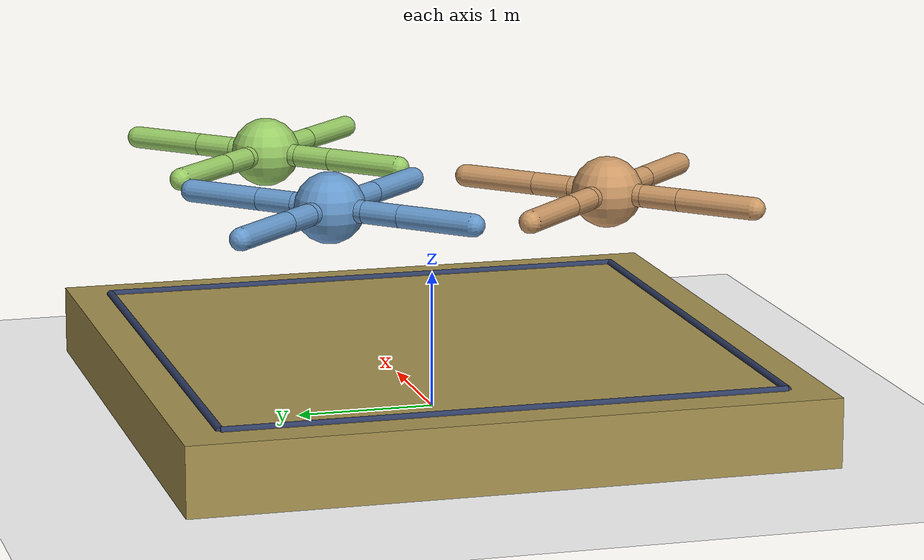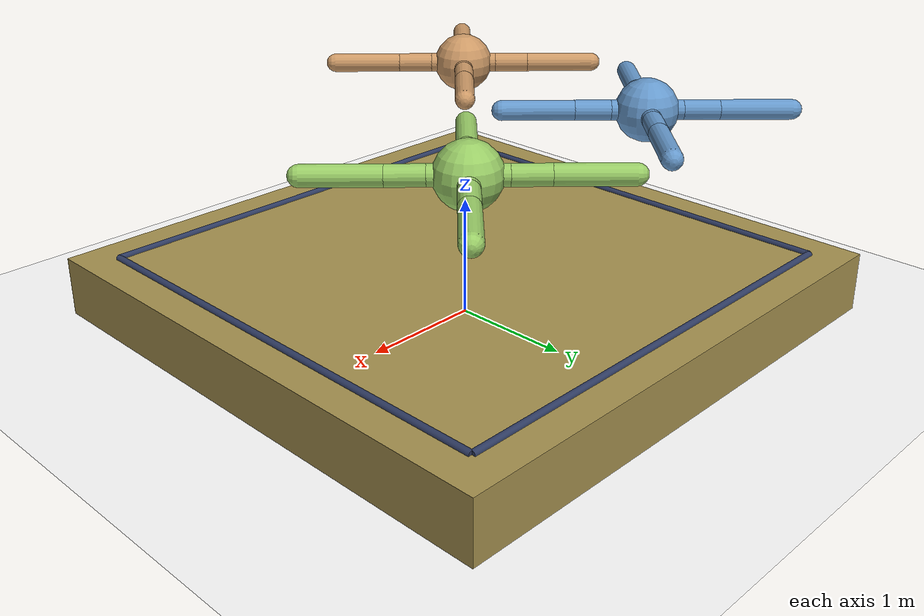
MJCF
<mujoco model="tatami">
  <compiler angle="degree" coordinate="local" inertiafromgeom="true"/>
  <option integrator="RK4" timestep="0.01"/>
  <size nconmax="1000" njmax="1000"/>

  <default>
    <joint armature="1" damping="1" limited="true"/>
    <default class="ant">
      <geom conaffinity="1" condim="3" density="5.0" friction="1 0.5 0.5" margin="0.01" rgba="0.8 0.6 0.4 1" material="geom"/>
      <motor ctrllimited="true" ctrlrange="-0.18 0.18"/>
    </default>

    <default class="bug">
      <geom conaffinity="1" condim="3" density="5.0" friction="1 0.5 0.5" margin="0.01" rgba="0.4 0.6 0.8 1" material="geom"/>
      <motor ctrllimited="true" ctrlrange="-0.2 0.2"/>

    <default class="spider">
      <geom conaffinity="1" condim="3" density="5.0" friction="1 0.5 0.5" margin="0.01" rgba="0.6 0.8 0.4 1" material="geom"/>
      <motor ctrllimited="true" ctrlrange="-0.22 0.22"/>
    </default>
  </default>

  </default>
  <asset>
    <texture builtin="gradient" height="100" rgb1=".8 .8 1" rgb2="1 1 1" type="skybox" width="100"/>
    <texture builtin="flat" height="1278" mark="cross" markrgb="1 1 1" name="texgeom" random="0.01" rgb1=".8 .6 .4" rgb2="0.8 0.6 0.4" type="cube" width="127"/>
    <texture builtin="flat" height="100" name="floorplane" rgb1="1 1 1" rgb2="1 1 1" type="2d" width="100"/>
    <texture builtin="flat" height="100" name="tatamiplane" rgb1=".65 0.57 0.31" rgb2="0 0 0" type="2d" width="100"/>
    <material name="MatPlane" reflectance="0.1" shininess="1" specular="1" texrepeat="1 1" texture="floorplane"/>
    <material name="TatamiPlane" reflectance="0.25" shininess="1" specular="1" texrepeat="1 1" texture="tatamiplane"/>
    <material name="geom" texture="texgeom" texuniform="true"/>
  </asset>
  <worldbody>
    <light cutoff="100" diffuse="1 1 1" dir="0 0 -1.3" directional="true" exponent="2" pos="0 0 1.3" specular=".5 .5 .5"/>
    <geom contype="1" conaffinity="1" friction="1 .1 .1" condim="3" material="MatPlane" name="floor" pos="0 0 -.025" rgba="1 1 1 1" size="20 20 0.125" type="plane"/>
    <geom conaffinity="1" condim="3" contype="1" friction="1 .1 .1" material="TatamiPlane" name="tatami" size="2.3 2.3 .25" pos="0 0 0.25" type="box" />
    <geom fromto="-2 2 .5  2 2 .5" name="topborder" rgba=".18 .23 .38 1" size=".03" type="cylinder"/>
    <geom fromto="2 -2 .5  2 2 .5" name="rightborder" rgba=".18 .23 .38 1" size=".03" type="cylinder"/>
    <geom fromto="-2 -2 .5  2 -2 .5" name="bottomborder" rgba=".18 .23 .38 1" size=".03" type="cylinder"/>
    <geom fromto="-2 -2 .5  -2 2 .5" name="leftborder" rgba=".18 .23 .38 1" size=".03" type="cylinder"/>
    <include file="include/ant.xml" />
    <include file="include/bug.xml" />
    <include file="include/spider.xml" />
  </worldbody>
  <include file="include/ant-sensor-actuator.xml" />
  <include file="include/bug-sensor-actuator.xml" />
  <include file="include/spider-sensor-actuator.xml" />
</mujoco>

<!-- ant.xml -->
<mujocoinclude>
  <body name="torso" pos="-1 -1 1.75">
    <geom class="ant" name="torso_geom" pos="0 0 0" size="0.25" type="sphere"/>
    <joint armature="0" damping="0" limited="false" margin="0.01" name="root" pos="0 0 0" type="free"/>
    <!-- Front left leg -->
    <body name="front_left_leg" pos="0 0 0">
      <geom class="ant" fromto="0.0 0.0 0.0 -0.2 0.2 0.0" name="aux_1_geom" size="0.08" type="capsule"/>
      <body name="aux_11" pos="-0.2 0.2 0">
        <joint axis="0 0 1" name="hip_1" pos="0.0 0.0 0.0" range="-30 30" type="hinge"/>
        <geom class="ant" fromto="0.0 0.0 0.0 -0.2 0.2 0.0" name="front_left_leg_geom" size="0.08" type="capsule"/>
        <body name="aux_12" pos="-0.2 0.2 0">
          <joint axis="1 1 0" name="ankle_1" pos="0.0 0.0 0.0" range="-70 -30" type="hinge"/>
          <geom class="ant" fromto="0.0 0.0 0.0 -0.4 0.4 0.0" name="front_left_ankle_geom" size="0.08" type="capsule"/>
        </body>
      </body>
    </body>
    <!-- Front right leg -->
    <body name="front_right_leg" pos="0 0 0">
      <geom class="ant" fromto="0.0 0.0 0.0 0.2 0.2 0.0" name="aux_2_geom" size="0.08" type="capsule"/>
      <body name="aux_21" pos="0.2 0.2 0">
        <joint axis="0 0 1" name="hip_2" pos="0.0 0.0 0.0" range="-30 30" type="hinge"/>
        <geom class="ant" fromto="0.0 0.0 0.0 0.2 0.2 0.0" name="front_right_leg_geom" size="0.08" type="capsule"/>
        <body name="aux_22" pos="0.2 0.2 0">
          <joint axis="-1 1 0" name="ankle_2" pos="0.0 0.0 0.0" range="30 70" type="hinge"/>
          <geom class="ant" fromto="0.0 0.0 0.0 0.4 0.4 0.0" name="front_right_ankle_geom" size="0.08" type="capsule"/>
        </body>
      </body>
    </body>
    <!-- Back left leg -->
    <body name="back_left_leg" pos="0 0 0">
      <geom class="ant" fromto="0.0 0.0 0.0 -0.2 -0.2 0.0" name="aux_3_geom" size="0.08" type="capsule"/>
      <body name="aux_31" pos="-0.2 -0.2 0">
        <joint axis="0 0 1" name="hip_3" pos="0.0 0.0 0.0" range="-30 30" type="hinge"/>
        <geom class="ant" fromto="0.0 0.0 0.0 -0.2 -0.2 0.0" name="back_left_leg_geom" size="0.08" type="capsule"/>
        <body name="aux_32" pos="-0.2 -0.2 0">
          <joint axis="-1 1 0" name="ankle_3" pos="0.0 0.0 0.0" range="-70 -30" type="hinge"/>
          <geom class="ant" fromto="0.0 0.0 0.0 -0.4 -0.4 0.0" name="back_left_ankle_geom" size="0.08" type="capsule"/>
        </body>
      </body>
    </body>
    <body name="back_right_leg" pos="0 0 0">
      <geom class="ant" fromto="0.0 0.0 0.0 0.2 -0.2 0.0" name="aux_4_geom" size="0.08" type="capsule"/>
      <body name="aux_41" pos="0.2 -0.2 0">
        <joint axis="0 0 1" name="hip_4" pos="0.0 0.0 0.0" range="-30 30" type="hinge"/>
        <geom class="ant" fromto="0.0 0.0 0.0 0.2 -0.2 0.0" name="back_right_leg_geom" size="0.08" type="capsule"/>
        <body name="aux_42" pos="0.2 -0.2 0">
          <joint axis="1 1 0" name="ankle_4" pos="0.0 0.0 0.0" range="30 70" type="hinge"/>
          <geom class="ant" fromto="0.0 0.0 0.0 0.4 -0.4 0.0" name="back_right_ankle_geom" size="0.08" type="capsule"/>
        </body>
      </body>
    </body>
  </body>
</mujocoinclude>

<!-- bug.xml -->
<mujocoinclude>
  <body name="torso2" pos="-1 1 1.75">
    <geom class="bug" name="torso_geom2" pos="0 0 0" size="0.25" type="sphere"/>
    <joint armature="0" damping="0" limited="false" margin="0.01" name="root2" pos="0 0 0" type="free"/>
    <!-- Front left leg -->
    <body name="front_left_leg2" pos="0 0 0">
      <geom class="bug" fromto="0.0 0.0 0.0 -0.2 0.2 0.0" name="aux_1_geom2" size="0.08" type="capsule"/>
      <body name="aux_112" pos="-0.2 0.2 0">
        <joint axis="0 0 1" name="hip_12" pos="0.0 0.0 0.0" range="-30 30" type="hinge"/>
        <geom class="bug" fromto="0.0 0.0 0.0 -0.2 0.2 0.0" name="front_left_leg_geom2" size="0.08" type="capsule"/>
        <body name="aux_122" pos="-0.2 0.2 0">
          <joint axis="1 1 0" name="ankle_12" pos="0.0 0.0 0.0" range="-70 -30" type="hinge"/>
          <geom class="bug" fromto="0.0 0.0 0.0 -0.4 0.4 0.0" name="front_left_ankle_geom2" size="0.08" type="capsule"/>
        </body>
      </body>
    </body>
    <!-- Front right leg -->
    <body name="front_right_leg2" pos="0 0 0">
      <geom class="bug" fromto="0.0 0.0 0.0 0.2 0.2 0.0" name="aux_2_geom2" size="0.08" type="capsule"/>
      <body name="aux_212" pos="0.2 0.2 0">
        <joint axis="0 0 1" name="hip_22" pos="0.0 0.0 0.0" range="-30 30" type="hinge"/>
        <geom class="bug" fromto="0.0 0.0 0.0 0.2 0.2 0.0" name="front_right_leg_geom2" size="0.08" type="capsule"/>
        <body name="aux_222" pos="0.2 0.2 0">
          <joint axis="-1 1 0" name="ankle_22" pos="0.0 0.0 0.0" range="30 70" type="hinge"/>
          <geom class="bug" fromto="0.0 0.0 0.0 0.4 0.4 0.0" name="front_right_ankle_geom2" size="0.08" type="capsule"/>
        </body>
      </body>
    </body>
    <!-- Back left leg -->
    <body name="back_left_leg2" pos="0 0 0">
      <geom class="bug" fromto="0.0 0.0 0.0 -0.2 -0.2 0.0" name="aux_3_geom2" size="0.08" type="capsule"/>
      <body name="aux_312" pos="-0.2 -0.2 0">
        <joint axis="0 0 1" name="hip_32" pos="0.0 0.0 0.0" range="-30 30" type="hinge"/>
        <geom class="bug" fromto="0.0 0.0 0.0 -0.2 -0.2 0.0" name="back_left_leg_geom2" size="0.08" type="capsule"/>
        <body name="aux_322" pos="-0.2 -0.2 0">
          <joint axis="-1 1 0" name="ankle_32" pos="0.0 0.0 0.0" range="-70 -30" type="hinge"/>
          <geom class="bug" fromto="0.0 0.0 0.0 -0.4 -0.4 0.0" name="back_left_ankle_geom2" size="0.08" type="capsule"/>
        </body>
      </body>
    </body>
    <body name="back_right_leg2" pos="0 0 0">
      <geom class="bug" fromto="0.0 0.0 0.0 0.2 -0.2 0.0" name="aux_4_geom2" size="0.08" type="capsule"/>
      <body name="aux_412" pos="0.2 -0.2 0">
        <joint axis="0 0 1" name="hip_42" pos="0.0 0.0 0.0" range="-30 30" type="hinge"/>
        <geom class="bug" fromto="0.0 0.0 0.0 0.2 -0.2 0.0" name="back_right_leg_geom2" size="0.08" type="capsule"/>
        <body name="aux_422" pos="0.2 -0.2 0">
          <joint axis="1 1 0" name="ankle_42" pos="0.0 0.0 0.0" range="30 70" type="hinge"/>
          <geom class="bug" fromto="0.0 0.0 0.0 0.4 -0.4 0.0" name="back_right_ankle_geom2" size="0.08" type="capsule"/>
        </body>
      </body>
    </body>
  </body>
</mujocoinclude>

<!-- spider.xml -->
<mujocoinclude>
  <body name="torso3" pos="1 1 1.75">
    <geom class="spider" name="torso_geom3" pos="0 0 0" size="0.25" type="sphere"/>
    <joint armature="0" damping="0" limited="false" margin="0.01" name="root3" pos="0 0 0" type="free"/>
    <!-- Front left leg -->
    <body name="front_left_leg3" pos="0 0 0">
      <geom class="spider" fromto="0.0 0.0 0.0 -0.2 0.2 0.0" name="aux_1_geom3" size="0.08" type="capsule"/>
      <body name="aux_113" pos="-0.2 0.2 0">
        <joint axis="0 0 1" name="hip_13" pos="0.0 0.0 0.0" range="-30 30" type="hinge"/>
        <geom class="spider" fromto="0.0 0.0 0.0 -0.2 0.2 0.0" name="front_left_leg_geom3" size="0.08" type="capsule"/>
        <body name="aux_123" pos="-0.2 0.2 0">
          <joint axis="1 1 0" name="ankle_13" pos="0.0 0.0 0.0" range="-70 -30" type="hinge"/>
          <geom class="spider" fromto="0.0 0.0 0.0 -0.4 0.4 0.0" name="front_left_ankle_geom3" size="0.08" type="capsule"/>
        </body>
      </body>
    </body>
    <!-- Front right leg -->
    <body name="front_right_leg3" pos="0 0 0">
      <geom class="spider" fromto="0.0 0.0 0.0 0.2 0.2 0.0" name="aux_2_geom3" size="0.08" type="capsule"/>
      <body name="aux_213" pos="0.2 0.2 0">
        <joint axis="0 0 1" name="hip_23" pos="0.0 0.0 0.0" range="-30 30" type="hinge"/>
        <geom class="spider" fromto="0.0 0.0 0.0 0.2 0.2 0.0" name="front_right_leg_geom3" size="0.08" type="capsule"/>
        <body name="aux_223" pos="0.2 0.2 0">
          <joint axis="-1 1 0" name="ankle_23" pos="0.0 0.0 0.0" range="30 70" type="hinge"/>
          <geom class="spider" fromto="0.0 0.0 0.0 0.4 0.4 0.0" name="front_right_ankle_geom3" size="0.08" type="capsule"/>
        </body>
      </body>
    </body>
    <!-- Back left leg -->
    <body name="back_left_leg3" pos="0 0 0">
      <geom class="spider" fromto="0.0 0.0 0.0 -0.2 -0.2 0.0" name="aux_3_geom3" size="0.08" type="capsule"/>
      <body name="aux_313" pos="-0.2 -0.2 0">
        <joint axis="0 0 1" name="hip_33" pos="0.0 0.0 0.0" range="-30 30" type="hinge"/>
        <geom class="spider" fromto="0.0 0.0 0.0 -0.2 -0.2 0.0" name="back_left_leg_geom3" size="0.08" type="capsule"/>
        <body name="aux_323" pos="-0.2 -0.2 0">
          <joint axis="-1 1 0" name="ankle_33" pos="0.0 0.0 0.0" range="-70 -30" type="hinge"/>
          <geom class="spider" fromto="0.0 0.0 0.0 -0.4 -0.4 0.0" name="back_left_ankle_geom3" size="0.08" type="capsule"/>
        </body>
      </body>
    </body>
    <body name="back_right_leg3" pos="0 0 0">
      <geom class="spider" fromto="0.0 0.0 0.0 0.2 -0.2 0.0" name="aux_4_geom3" size="0.08" type="capsule"/>
      <body name="aux_413" pos="0.2 -0.2 0">
        <joint axis="0 0 1" name="hip_43" pos="0.0 0.0 0.0" range="-30 30" type="hinge"/>
        <geom class="spider" fromto="0.0 0.0 0.0 0.2 -0.2 0.0" name="back_right_leg_geom3" size="0.08" type="capsule"/>
        <body name="aux_423" pos="0.2 -0.2 0">
          <joint axis="1 1 0" name="ankle_43" pos="0.0 0.0 0.0" range="30 70" type="hinge"/>
          <geom class="spider" fromto="0.0 0.0 0.0 0.4 -0.4 0.0" name="back_right_ankle_geom3" size="0.08" type="capsule"/>
        </body>
      </body>
    </body>
  </body>
</mujocoinclude>

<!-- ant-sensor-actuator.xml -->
<mujocoinclude>
    <actuator>
    <motor class="ant" joint="hip_1" gear="150"/>
    <motor class="ant" joint="ankle_1" gear="150"/>
    <motor class="ant" joint="hip_2" gear="150"/>
    <motor class="ant" joint="ankle_2" gear="150"/>
    <motor class="ant" joint="hip_3" gear="150"/>
    <motor class="ant" joint="ankle_3" gear="150"/>
    <motor class="ant" joint="hip_4" gear="150"/>
    <motor class="ant" joint="ankle_4" gear="150"/>
  </actuator>
  <sensor>
    <!-- Positions -->
    <jointpos name='pos_hip_12' joint='hip_1' />
    <jointpos name='pos_hip_22' joint='hip_2' />
    <jointpos name='pos_hip_32' joint='hip_3' />
    <jointpos name='pos_hip_42' joint='hip_4' />
    <jointpos name='pos_ankle_12' joint='ankle_1' />
    <jointpos name='pos_ankle_22' joint='ankle_2' />
    <jointpos name='pos_ankle_32' joint='ankle_3' />
    <jointpos name='pos_ankle_42' joint='ankle_4' />
    <!-- Velocities -->
    <jointvel name='vel_hip_12'   joint='hip_1' />
    <jointvel name='vel_hip_22'   joint='hip_2' />
    <jointvel name='vel_hip_32'   joint='hip_3' />
    <jointvel name='vel_hip_42'   joint='hip_4' />
    <jointvel name='vel_ankle_12' joint='ankle_1' />
    <jointvel name='vel_ankle_22' joint='ankle_2' />
    <jointvel name='vel_ankle_32' joint='ankle_3' />
    <jointvel name='vel_ankle_42' joint='ankle_4' />
  </sensor>
</mujocoinclude>

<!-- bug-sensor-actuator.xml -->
<mujocoinclude>
    <actuator>
    <motor class="bug" joint="hip_12" gear="150"/>
    <motor class="bug" joint="ankle_12" gear="150"/>
    <motor class="bug" joint="hip_22" gear="150"/>
    <motor class="bug" joint="ankle_22" gear="150"/>
    <motor class="bug" joint="hip_32" gear="150"/>
    <motor class="bug" joint="ankle_32" gear="150"/>
    <motor class="bug" joint="hip_42" gear="150"/>
    <motor class="bug" joint="ankle_42" gear="150"/>
  </actuator>
  <sensor>
    <!-- Positions -->
    <jointpos name='pos_hip_1' joint='hip_12' />
    <jointpos name='pos_hip_2' joint='hip_22' />
    <jointpos name='pos_hip_3' joint='hip_32' />
    <jointpos name='pos_hip_4' joint='hip_42' />
    <jointpos name='pos_ankle_1' joint='ankle_12' />
    <jointpos name='pos_ankle_2' joint='ankle_22' />
    <jointpos name='pos_ankle_3' joint='ankle_32' />
    <jointpos name='pos_ankle_4' joint='ankle_42' />
    <!-- Velocities -->
    <jointvel name='vel_hip_1'   joint='hip_12' />
    <jointvel name='vel_hip_2'   joint='hip_22' />
    <jointvel name='vel_hip_3'   joint='hip_32' />
    <jointvel name='vel_hip_4'   joint='hip_42' />
    <jointvel name='vel_ankle_1' joint='ankle_12' />
    <jointvel name='vel_ankle_2' joint='ankle_22' />
    <jointvel name='vel_ankle_3' joint='ankle_32' />
    <jointvel name='vel_ankle_4' joint='ankle_42' />
  </sensor>
</mujocoinclude>

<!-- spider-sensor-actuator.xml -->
<mujocoinclude>
    <actuator>
    <motor class="spider" joint="hip_13" gear="150"/>
    <motor class="spider" joint="ankle_13" gear="150"/>
    <motor class="spider" joint="hip_23" gear="150"/>
    <motor class="spider" joint="ankle_23" gear="150"/>
    <motor class="spider" joint="hip_33" gear="150"/>
    <motor class="spider" joint="ankle_33" gear="150"/>
    <motor class="spider" joint="hip_43" gear="150"/>
    <motor class="spider" joint="ankle_43" gear="150"/>
  </actuator>
  <sensor>
    <!-- Positions -->
    <jointpos name='pos_hip_13' joint='hip_13' />
    <jointpos name='pos_hip_23' joint='hip_23' />
    <jointpos name='pos_hip_33' joint='hip_33' />
    <jointpos name='pos_hip_43' joint='hip_43' />
    <jointpos name='pos_ankle_13' joint='ankle_13' />
    <jointpos name='pos_ankle_23' joint='ankle_23' />
    <jointpos name='pos_ankle_33' joint='ankle_33' />
    <jointpos name='pos_ankle_43' joint='ankle_43' />
    <!-- Velocities -->
    <jointvel name='vel_hip_13'   joint='hip_13' />
    <jointvel name='vel_hip_23'   joint='hip_23' />
    <jointvel name='vel_hip_33'   joint='hip_33' />
    <jointvel name='vel_hip_43'   joint='hip_43' />
    <jointvel name='vel_ankle_13' joint='ankle_13' />
    <jointvel name='vel_ankle_23' joint='ankle_23' />
    <jointvel name='vel_ankle_33' joint='ankle_33' />
    <jointvel name='vel_ankle_43' joint='ankle_43' />
  </sensor>
</mujocoinclude>
